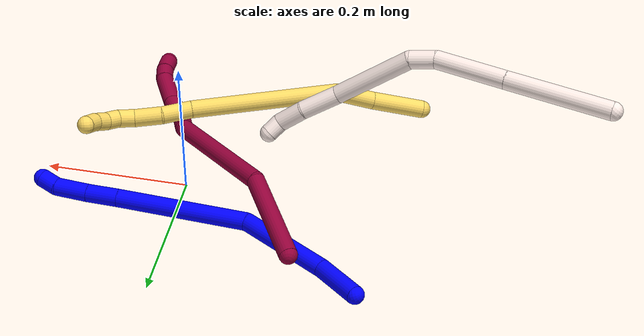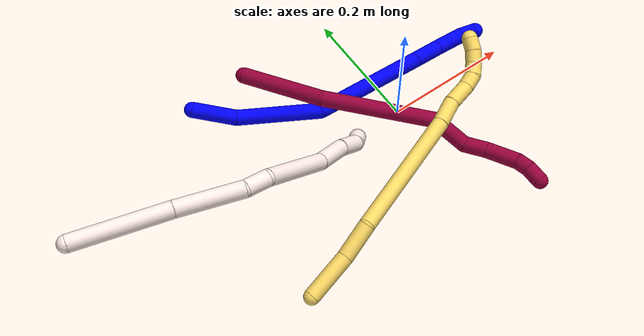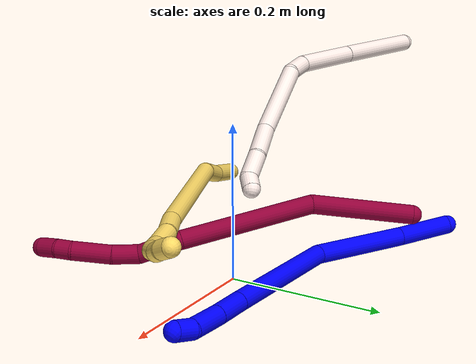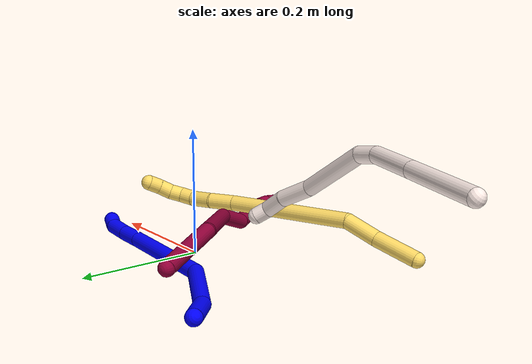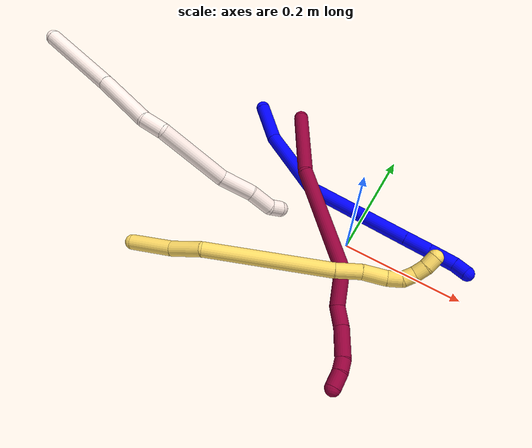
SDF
<sdf version="1.7">
 <world name="default">
  <model name="1">
   <static>0</static>
   <link name="1">
    <collision name="collision-cylinder-e_1_1_4">
     <pose>0.019555 0.013454 0.026318 -0.472562 0.584486 -0.144627</pose>
     <geometry><cylinder><radius>0.0125</radius><length>0.070882</length></cylinder></geometry>
     <surface>
      <friction><ode><mu>1.16</mu><mu2>1.16</mu2><slip1>0</slip1><slip2>0</slip2></ode></friction>
      <contact><ode><kp>1e+06</kp><kd>1</kd><max_vel>0</max_vel><min_depth>0.001</min_depth></ode></contact>
     </surface>
    </collision>
    <visual name="visual-cylinder-e_1_1_4">
     <pose>0.019555 0.013454 0.026318 -0.472562 0.584486 -0.144627</pose>
     <geometry><cylinder><radius>0.0125</radius><length>0.070882</length></cylinder></geometry>
     <material><ambient>0 0 1 1</ambient></material>
    </visual>
    <collision name="collision-cylinder-e_2_4_5">
     <pose>0.080134 0.035462 0.104098 -0.164734 0.666375 -0.057127</pose>
     <geometry><cylinder><radius>0.0125</radius><length>0.13273</length></cylinder></geometry>
     <surface>
      <friction><ode><mu>1.16</mu><mu2>1.16</mu2><slip1>0</slip1><slip2>0</slip2></ode></friction>
      <contact><ode><kp>1e+06</kp><kd>1</kd><max_vel>0</max_vel><min_depth>0.001</min_depth></ode></contact>
     </surface>
    </collision>
    <visual name="visual-cylinder-e_2_4_5">
     <pose>0.080134 0.035462 0.104098 -0.164734 0.666375 -0.057127</pose>
     <geometry><cylinder><radius>0.0125</radius><length>0.13273</length></cylinder></geometry>
     <material><ambient>0 0 1 1</ambient></material>
    </visual>
    <collision name="collision-cylinder-e_3_5_6">
     <pose>0.161346 0.017553 0.233184 0.328572 0.455655 0.076835</pose>
     <geometry><cylinder><radius>0.0125</radius><length>0.18266</length></cylinder></geometry>
     <surface>
      <friction><ode><mu>1.16</mu><mu2>1.16</mu2><slip1>0</slip1><slip2>0</slip2></ode></friction>
      <contact><ode><kp>1e+06</kp><kd>1</kd><max_vel>0</max_vel><min_depth>0.001</min_depth></ode></contact>
     </surface>
    </collision>
    <visual name="visual-cylinder-e_3_5_6">
     <pose>0.161346 0.017553 0.233184 0.328572 0.455655 0.076835</pose>
     <geometry><cylinder><radius>0.0125</radius><length>0.18266</length></cylinder></geometry>
     <material><ambient>0 0 1 1</ambient></material>
    </visual>
    <collision name="collision-cylinder-e_4_6_7">
     <pose>0.210836 -0.015401 0.329498 0.334169 0.439396 0.075287</pose>
     <geometry><cylinder><radius>0.0125</radius><length>0.043722</length></cylinder></geometry>
     <surface>
      <friction><ode><mu>1.16</mu><mu2>1.16</mu2><slip1>0</slip1><slip2>0</slip2></ode></friction>
      <contact><ode><kp>1e+06</kp><kd>1</kd><max_vel>0</max_vel><min_depth>0.001</min_depth></ode></contact>
     </surface>
    </collision>
    <visual name="visual-cylinder-e_4_6_7">
     <pose>0.210836 -0.015401 0.329498 0.334169 0.439396 0.075287</pose>
     <geometry><cylinder><radius>0.0125</radius><length>0.043722</length></cylinder></geometry>
     <material><ambient>0 0 1 1</ambient></material>
    </visual>
    <collision name="collision-cylinder-e_5_7_8">
     <pose>0.230597 -0.028307 0.36743 0.321922 0.476184 0.07877</pose>
     <geometry><cylinder><radius>0.0125</radius><length>0.045647</length></cylinder></geometry>
     <surface>
      <friction><ode><mu>1.16</mu><mu2>1.16</mu2><slip1>0</slip1><slip2>0</slip2></ode></friction>
      <contact><ode><kp>1e+06</kp><kd>1</kd><max_vel>0</max_vel><min_depth>0.001</min_depth></ode></contact>
     </surface>
    </collision>
    <visual name="visual-cylinder-e_5_7_8">
     <pose>0.230597 -0.028307 0.36743 0.321922 0.476184 0.07877</pose>
     <geometry><cylinder><radius>0.0125</radius><length>0.045647</length></cylinder></geometry>
     <material><ambient>0 0 1 1</ambient></material>
    </visual>
    <collision name="collision-cylinder-e_6_8_2">
     <pose>0.249553 -0.035866 0.395327 0.131086 0.771734 0.053315</pose>
     <geometry><cylinder><radius>0.0125</radius><length>0.024359</length></cylinder></geometry>
     <surface>
      <friction><ode><mu>1.16</mu><mu2>1.16</mu2><slip1>0</slip1><slip2>0</slip2></ode></friction>
      <contact><ode><kp>1e+06</kp><kd>1</kd><max_vel>0</max_vel><min_depth>0.001</min_depth></ode></contact>
     </surface>
    </collision>
    <visual name="visual-cylinder-e_6_8_2">
     <pose>0.249553 -0.035866 0.395327 0.131086 0.771734 0.053315</pose>
     <geometry><cylinder><radius>0.0125</radius><length>0.024359</length></cylinder></geometry>
     <material><ambient>0 0 1 1</ambient></material>
    </visual>
    <collision name="collision-sphere-2">
     <pose>0.258047 -0.037007 0.403981 0 -0 0</pose>
     <geometry><sphere><radius>0.0125</radius></sphere></geometry>
     <surface>
      <friction><ode><mu>1.16</mu><mu2>1.16</mu2><slip1>0</slip1><slip2>0</slip2></ode></friction>
      <contact><ode><kp>1e+06</kp><kd>1</kd><max_vel>0</max_vel><min_depth>0.001</min_depth></ode></contact>
     </surface>
    </collision>
    <visual name="visual-sphere-2">
     <pose>0.258047 -0.037007 0.403981 0 -0 0</pose>
     <geometry><sphere><radius>0.0125</radius></sphere></geometry>
     <material><ambient>0 0 1 1</ambient></material>
    </visual>
    <collision name="collision-sphere-4">
     <pose>0.039111 0.026907 0.052637 0 -0 0</pose>
     <geometry><sphere><radius>0.0125</radius></sphere></geometry>
     <surface>
      <friction><ode><mu>1.16</mu><mu2>1.16</mu2><slip1>0</slip1><slip2>0</slip2></ode></friction>
      <contact><ode><kp>1e+06</kp><kd>1</kd><max_vel>0</max_vel><min_depth>0.001</min_depth></ode></contact>
     </surface>
    </collision>
    <visual name="visual-sphere-4">
     <pose>0.039111 0.026907 0.052637 0 -0 0</pose>
     <geometry><sphere><radius>0.0125</radius></sphere></geometry>
     <material><ambient>0 0 1 1</ambient></material>
    </visual>
    <collision name="collision-sphere-1">
     <geometry><sphere><radius>0.0125</radius></sphere></geometry>
     <surface>
      <friction><ode><mu>1.16</mu><mu2>1.16</mu2><slip1>0</slip1><slip2>0</slip2></ode></friction>
      <contact><ode><kp>1e+06</kp><kd>1</kd><max_vel>0</max_vel><min_depth>0.001</min_depth></ode></contact>
     </surface>
    </collision>
    <visual name="visual-sphere-1">
     <geometry><sphere><radius>0.0125</radius></sphere></geometry>
     <material><ambient>0 0 1 1</ambient></material>
    </visual>
    <collision name="collision-sphere-8">
     <pose>0.241059 -0.034725 0.386672 0 -0 0</pose>
     <geometry><sphere><radius>0.0125</radius></sphere></geometry>
     <surface>
      <friction><ode><mu>1.16</mu><mu2>1.16</mu2><slip1>0</slip1><slip2>0</slip2></ode></friction>
      <contact><ode><kp>1e+06</kp><kd>1</kd><max_vel>0</max_vel><min_depth>0.001</min_depth></ode></contact>
     </surface>
    </collision>
    <visual name="visual-sphere-8">
     <pose>0.241059 -0.034725 0.386672 0 -0 0</pose>
     <geometry><sphere><radius>0.0125</radius></sphere></geometry>
     <material><ambient>0 0 1 1</ambient></material>
    </visual>
    <collision name="collision-sphere-5">
     <pose>0.121157 0.044017 0.155559 0 -0 0</pose>
     <geometry><sphere><radius>0.0125</radius></sphere></geometry>
     <surface>
      <friction><ode><mu>1.16</mu><mu2>1.16</mu2><slip1>0</slip1><slip2>0</slip2></ode></friction>
      <contact><ode><kp>1e+06</kp><kd>1</kd><max_vel>0</max_vel><min_depth>0.001</min_depth></ode></contact>
     </surface>
    </collision>
    <visual name="visual-sphere-5">
     <pose>0.121157 0.044017 0.155559 0 -0 0</pose>
     <geometry><sphere><radius>0.0125</radius></sphere></geometry>
     <material><ambient>0 0 1 1</ambient></material>
    </visual>
    <collision name="collision-sphere-6">
     <pose>0.201536 -0.008912 0.310808 0 -0 0</pose>
     <geometry><sphere><radius>0.0125</radius></sphere></geometry>
     <surface>
      <friction><ode><mu>1.16</mu><mu2>1.16</mu2><slip1>0</slip1><slip2>0</slip2></ode></friction>
      <contact><ode><kp>1e+06</kp><kd>1</kd><max_vel>0</max_vel><min_depth>0.001</min_depth></ode></contact>
     </surface>
    </collision>
    <visual name="visual-sphere-6">
     <pose>0.201536 -0.008912 0.310808 0 -0 0</pose>
     <geometry><sphere><radius>0.0125</radius></sphere></geometry>
     <material><ambient>0 0 1 1</ambient></material>
    </visual>
    <collision name="collision-sphere-7">
     <pose>0.220135 -0.021889 0.348188 0 -0 0</pose>
     <geometry><sphere><radius>0.0125</radius></sphere></geometry>
     <surface>
      <friction><ode><mu>1.16</mu><mu2>1.16</mu2><slip1>0</slip1><slip2>0</slip2></ode></friction>
      <contact><ode><kp>1e+06</kp><kd>1</kd><max_vel>0</max_vel><min_depth>0.001</min_depth></ode></contact>
     </surface>
    </collision>
    <visual name="visual-sphere-7">
     <pose>0.220135 -0.021889 0.348188 0 -0 0</pose>
     <geometry><sphere><radius>0.0125</radius></sphere></geometry>
     <material><ambient>0 0 1 1</ambient></material>
    </visual>
    <inertial>
     <pose>0.134634 0.012055 0.198168 0 -0 0</pose>
     <mass>0.5</mass>
     <inertia>
      <ixx>0.000707</ixx>
      <ixy>0</ixy>
      <ixz>0</ixz>
      <iyy>0.00076</iyy>
      <iyz>0</iyz>
      <izz>-0.00023</izz>
     </inertia>
    </inertial>
   </link>
   <pose>-0.26911 0.17903 0.022063 -2.46077 -0.831567 -0.915773</pose>
  </model>
  <model name="5">
   <static>0</static>
   <link name="5">
    <collision name="collision-cylinder-e_1_1_4">
     <pose>-0.002682 0.008479 -0.035673 -2.90825 -0.073017 0.604182</pose>
     <geometry><cylinder><radius>0.0125</radius><length>0.073529</length></cylinder></geometry>
     <surface>
      <friction><ode><mu>1.16</mu><mu2>1.16</mu2><slip1>0</slip1><slip2>0</slip2></ode></friction>
      <contact><ode><kp>1e+06</kp><kd>1</kd><max_vel>0</max_vel><min_depth>0.001</min_depth></ode></contact>
     </surface>
    </collision>
    <visual name="visual-cylinder-e_1_1_4">
     <pose>-0.002682 0.008479 -0.035673 -2.90825 -0.073017 0.604182</pose>
     <geometry><cylinder><radius>0.0125</radius><length>0.073529</length></cylinder></geometry>
     <material><ambient>1 0.858824 0.4 1</ambient></material>
    </visual>
    <collision name="collision-cylinder-e_2_4_5">
     <pose>-0.010913 0.022059 -0.097785 -2.95098 -0.203211 1.63517</pose>
     <geometry><cylinder><radius>0.0125</radius><length>0.054985</length></cylinder></geometry>
     <surface>
      <friction><ode><mu>1.16</mu><mu2>1.16</mu2><slip1>0</slip1><slip2>0</slip2></ode></friction>
      <contact><ode><kp>1e+06</kp><kd>1</kd><max_vel>0</max_vel><min_depth>0.001</min_depth></ode></contact>
     </surface>
    </collision>
    <visual name="visual-cylinder-e_2_4_5">
     <pose>-0.010913 0.022059 -0.097785 -2.95098 -0.203211 1.63517</pose>
     <geometry><cylinder><radius>0.0125</radius><length>0.054985</length></cylinder></geometry>
     <material><ambient>1 0.858824 0.4 1</ambient></material>
    </visual>
    <collision name="collision-cylinder-e_3_5_6">
     <pose>-0.002191 0.030246 -0.226852 -3.11153 0.138102 -2.71357</pose>
     <geometry><cylinder><radius>0.0125</radius><length>0.207323</length></cylinder></geometry>
     <surface>
      <friction><ode><mu>1.16</mu><mu2>1.16</mu2><slip1>0</slip1><slip2>0</slip2></ode></friction>
      <contact><ode><kp>1e+06</kp><kd>1</kd><max_vel>0</max_vel><min_depth>0.001</min_depth></ode></contact>
     </surface>
    </collision>
    <visual name="visual-cylinder-e_3_5_6">
     <pose>-0.002191 0.030246 -0.226852 -3.11153 0.138102 -2.71357</pose>
     <geometry><cylinder><radius>0.0125</radius><length>0.207323</length></cylinder></geometry>
     <material><ambient>1 0.858824 0.4 1</ambient></material>
    </visual>
    <collision name="collision-cylinder-e_4_6_7">
     <pose>0.014344 0.031496 -0.350219 3.0533 0.108348 1.77438</pose>
     <geometry><cylinder><radius>0.0125</radius><length>0.041886</length></cylinder></geometry>
     <surface>
      <friction><ode><mu>1.16</mu><mu2>1.16</mu2><slip1>0</slip1><slip2>0</slip2></ode></friction>
      <contact><ode><kp>1e+06</kp><kd>1</kd><max_vel>0</max_vel><min_depth>0.001</min_depth></ode></contact>
     </surface>
    </collision>
    <visual name="visual-cylinder-e_4_6_7">
     <pose>0.014344 0.031496 -0.350219 3.0533 0.108348 1.77438</pose>
     <geometry><cylinder><radius>0.0125</radius><length>0.041886</length></cylinder></geometry>
     <material><ambient>1 0.858824 0.4 1</ambient></material>
    </visual>
    <collision name="collision-cylinder-e_5_7_8">
     <pose>0.020641 0.031519 -0.389856 -3.04355 0.209232 -2.26736</pose>
     <geometry><cylinder><radius>0.0125</radius><length>0.038824</length></cylinder></geometry>
     <surface>
      <friction><ode><mu>1.16</mu><mu2>1.16</mu2><slip1>0</slip1><slip2>0</slip2></ode></friction>
      <contact><ode><kp>1e+06</kp><kd>1</kd><max_vel>0</max_vel><min_depth>0.001</min_depth></ode></contact>
     </surface>
    </collision>
    <visual name="visual-cylinder-e_5_7_8">
     <pose>0.020641 0.031519 -0.389856 -3.04355 0.209232 -2.26736</pose>
     <geometry><cylinder><radius>0.0125</radius><length>0.038824</length></cylinder></geometry>
     <material><ambient>1 0.858824 0.4 1</ambient></material>
    </visual>
    <collision name="collision-cylinder-e_6_8_9">
     <pose>0.02466 0.033885 -0.420318 -3.09775 -0.001111 0.050661</pose>
     <geometry><cylinder><radius>0.0125</radius><length>0.023152</length></cylinder></geometry>
     <surface>
      <friction><ode><mu>1.16</mu><mu2>1.16</mu2><slip1>0</slip1><slip2>0</slip2></ode></friction>
      <contact><ode><kp>1e+06</kp><kd>1</kd><max_vel>0</max_vel><min_depth>0.001</min_depth></ode></contact>
     </surface>
    </collision>
    <visual name="visual-cylinder-e_6_8_9">
     <pose>0.02466 0.033885 -0.420318 -3.09775 -0.001111 0.050661</pose>
     <geometry><cylinder><radius>0.0125</radius><length>0.023152</length></cylinder></geometry>
     <material><ambient>1 0.858824 0.4 1</ambient></material>
    </visual>
    <collision name="collision-cylinder-e_7_9_10">
     <pose>0.021967 0.030927 -0.440987 2.77788 -0.268541 -1.26715</pose>
     <geometry><cylinder><radius>0.0125</radius><length>0.020208</length></cylinder></geometry>
     <surface>
      <friction><ode><mu>1.16</mu><mu2>1.16</mu2><slip1>0</slip1><slip2>0</slip2></ode></friction>
      <contact><ode><kp>1e+06</kp><kd>1</kd><max_vel>0</max_vel><min_depth>0.001</min_depth></ode></contact>
     </surface>
    </collision>
    <visual name="visual-cylinder-e_7_9_10">
     <pose>0.021967 0.030927 -0.440987 2.77788 -0.268541 -1.26715</pose>
     <geometry><cylinder><radius>0.0125</radius><length>0.020208</length></cylinder></geometry>
     <material><ambient>1 0.858824 0.4 1</ambient></material>
    </visual>
    <collision name="collision-cylinder-e_8_10_11">
     <pose>0.014498 0.024084 -0.45824 2.74862 -0.49731 -1.81183</pose>
     <geometry><cylinder><radius>0.0125</radius><length>0.020074</length></cylinder></geometry>
     <surface>
      <friction><ode><mu>1.16</mu><mu2>1.16</mu2><slip1>0</slip1><slip2>0</slip2></ode></friction>
      <contact><ode><kp>1e+06</kp><kd>1</kd><max_vel>0</max_vel><min_depth>0.001</min_depth></ode></contact>
     </surface>
    </collision>
    <visual name="visual-cylinder-e_8_10_11">
     <pose>0.014498 0.024084 -0.45824 2.74862 -0.49731 -1.81183</pose>
     <geometry><cylinder><radius>0.0125</radius><length>0.020074</length></cylinder></geometry>
     <material><ambient>1 0.858824 0.4 1</ambient></material>
    </visual>
    <collision name="collision-cylinder-e_9_11_2">
     <pose>0.004554 0.015339 -0.473084 2.46582 -0.540996 -1.33625</pose>
     <geometry><cylinder><radius>0.0125</radius><length>0.02002</length></cylinder></geometry>
     <surface>
      <friction><ode><mu>1.16</mu><mu2>1.16</mu2><slip1>0</slip1><slip2>0</slip2></ode></friction>
      <contact><ode><kp>1e+06</kp><kd>1</kd><max_vel>0</max_vel><min_depth>0.001</min_depth></ode></contact>
     </surface>
    </collision>
    <visual name="visual-cylinder-e_9_11_2">
     <pose>0.004554 0.015339 -0.473084 2.46582 -0.540996 -1.33625</pose>
     <geometry><cylinder><radius>0.0125</radius><length>0.02002</length></cylinder></geometry>
     <material><ambient>1 0.858824 0.4 1</ambient></material>
    </visual>
    <collision name="collision-sphere-2">
     <pose>-0.000601 0.009972 -0.479778 0 -0 0</pose>
     <geometry><sphere><radius>0.0125</radius></sphere></geometry>
     <surface>
      <friction><ode><mu>1.16</mu><mu2>1.16</mu2><slip1>0</slip1><slip2>0</slip2></ode></friction>
      <contact><ode><kp>1e+06</kp><kd>1</kd><max_vel>0</max_vel><min_depth>0.001</min_depth></ode></contact>
     </surface>
    </collision>
    <visual name="visual-sphere-2">
     <pose>-0.000601 0.009972 -0.479778 0 -0 0</pose>
     <geometry><sphere><radius>0.0125</radius></sphere></geometry>
     <material><ambient>1 0.858824 0.4 1</ambient></material>
    </visual>
    <collision name="collision-sphere-11">
     <pose>0.009709 0.020706 -0.466389 0 -0 0</pose>
     <geometry><sphere><radius>0.0125</radius></sphere></geometry>
     <surface>
      <friction><ode><mu>1.16</mu><mu2>1.16</mu2><slip1>0</slip1><slip2>0</slip2></ode></friction>
      <contact><ode><kp>1e+06</kp><kd>1</kd><max_vel>0</max_vel><min_depth>0.001</min_depth></ode></contact>
     </surface>
    </collision>
    <visual name="visual-sphere-11">
     <pose>0.009709 0.020706 -0.466389 0 -0 0</pose>
     <geometry><sphere><radius>0.0125</radius></sphere></geometry>
     <material><ambient>1 0.858824 0.4 1</ambient></material>
    </visual>
    <collision name="collision-sphere-10">
     <pose>0.019286 0.027462 -0.450092 0 -0 0</pose>
     <geometry><sphere><radius>0.0125</radius></sphere></geometry>
     <surface>
      <friction><ode><mu>1.16</mu><mu2>1.16</mu2><slip1>0</slip1><slip2>0</slip2></ode></friction>
      <contact><ode><kp>1e+06</kp><kd>1</kd><max_vel>0</max_vel><min_depth>0.001</min_depth></ode></contact>
     </surface>
    </collision>
    <visual name="visual-sphere-10">
     <pose>0.019286 0.027462 -0.450092 0 -0 0</pose>
     <geometry><sphere><radius>0.0125</radius></sphere></geometry>
     <material><ambient>1 0.858824 0.4 1</ambient></material>
    </visual>
    <collision name="collision-sphere-9">
     <pose>0.024648 0.034393 -0.431882 0 -0 0</pose>
     <geometry><sphere><radius>0.0125</radius></sphere></geometry>
     <surface>
      <friction><ode><mu>1.16</mu><mu2>1.16</mu2><slip1>0</slip1><slip2>0</slip2></ode></friction>
      <contact><ode><kp>1e+06</kp><kd>1</kd><max_vel>0</max_vel><min_depth>0.001</min_depth></ode></contact>
     </surface>
    </collision>
    <visual name="visual-sphere-9">
     <pose>0.024648 0.034393 -0.431882 0 -0 0</pose>
     <geometry><sphere><radius>0.0125</radius></sphere></geometry>
     <material><ambient>1 0.858824 0.4 1</ambient></material>
    </visual>
    <collision name="collision-sphere-4">
     <pose>-0.005364 0.016957 -0.071346 0 -0 0</pose>
     <geometry><sphere><radius>0.0125</radius></sphere></geometry>
     <surface>
      <friction><ode><mu>1.16</mu><mu2>1.16</mu2><slip1>0</slip1><slip2>0</slip2></ode></friction>
      <contact><ode><kp>1e+06</kp><kd>1</kd><max_vel>0</max_vel><min_depth>0.001</min_depth></ode></contact>
     </surface>
    </collision>
    <visual name="visual-sphere-4">
     <pose>-0.005364 0.016957 -0.071346 0 -0 0</pose>
     <geometry><sphere><radius>0.0125</radius></sphere></geometry>
     <material><ambient>1 0.858824 0.4 1</ambient></material>
    </visual>
    <collision name="collision-sphere-1">
     <geometry><sphere><radius>0.0125</radius></sphere></geometry>
     <surface>
      <friction><ode><mu>1.16</mu><mu2>1.16</mu2><slip1>0</slip1><slip2>0</slip2></ode></friction>
      <contact><ode><kp>1e+06</kp><kd>1</kd><max_vel>0</max_vel><min_depth>0.001</min_depth></ode></contact>
     </surface>
    </collision>
    <visual name="visual-sphere-1">
     <geometry><sphere><radius>0.0125</radius></sphere></geometry>
     <material><ambient>1 0.858824 0.4 1</ambient></material>
    </visual>
    <collision name="collision-sphere-8">
     <pose>0.024673 0.033378 -0.408753 0 -0 0</pose>
     <geometry><sphere><radius>0.0125</radius></sphere></geometry>
     <surface>
      <friction><ode><mu>1.16</mu><mu2>1.16</mu2><slip1>0</slip1><slip2>0</slip2></ode></friction>
      <contact><ode><kp>1e+06</kp><kd>1</kd><max_vel>0</max_vel><min_depth>0.001</min_depth></ode></contact>
     </surface>
    </collision>
    <visual name="visual-sphere-8">
     <pose>0.024673 0.033378 -0.408753 0 -0 0</pose>
     <geometry><sphere><radius>0.0125</radius></sphere></geometry>
     <material><ambient>1 0.858824 0.4 1</ambient></material>
    </visual>
    <collision name="collision-sphere-5">
     <pose>-0.016461 0.02716 -0.124224 0 -0 0</pose>
     <geometry><sphere><radius>0.0125</radius></sphere></geometry>
     <surface>
      <friction><ode><mu>1.16</mu><mu2>1.16</mu2><slip1>0</slip1><slip2>0</slip2></ode></friction>
      <contact><ode><kp>1e+06</kp><kd>1</kd><max_vel>0</max_vel><min_depth>0.001</min_depth></ode></contact>
     </surface>
    </collision>
    <visual name="visual-sphere-5">
     <pose>-0.016461 0.02716 -0.124224 0 -0 0</pose>
     <geometry><sphere><radius>0.0125</radius></sphere></geometry>
     <material><ambient>1 0.858824 0.4 1</ambient></material>
    </visual>
    <collision name="collision-sphere-6">
     <pose>0.01208 0.033332 -0.32948 0 -0 0</pose>
     <geometry><sphere><radius>0.0125</radius></sphere></geometry>
     <surface>
      <friction><ode><mu>1.16</mu><mu2>1.16</mu2><slip1>0</slip1><slip2>0</slip2></ode></friction>
      <contact><ode><kp>1e+06</kp><kd>1</kd><max_vel>0</max_vel><min_depth>0.001</min_depth></ode></contact>
     </surface>
    </collision>
    <visual name="visual-sphere-6">
     <pose>0.01208 0.033332 -0.32948 0 -0 0</pose>
     <geometry><sphere><radius>0.0125</radius></sphere></geometry>
     <material><ambient>1 0.858824 0.4 1</ambient></material>
    </visual>
    <collision name="collision-sphere-7">
     <pose>0.016609 0.02966 -0.370958 0 -0 0</pose>
     <geometry><sphere><radius>0.0125</radius></sphere></geometry>
     <surface>
      <friction><ode><mu>1.16</mu><mu2>1.16</mu2><slip1>0</slip1><slip2>0</slip2></ode></friction>
      <contact><ode><kp>1e+06</kp><kd>1</kd><max_vel>0</max_vel><min_depth>0.001</min_depth></ode></contact>
     </surface>
    </collision>
    <visual name="visual-sphere-7">
     <pose>0.016609 0.02966 -0.370958 0 -0 0</pose>
     <geometry><sphere><radius>0.0125</radius></sphere></geometry>
     <material><ambient>1 0.858824 0.4 1</ambient></material>
    </visual>
    <inertial>
     <pose>0.003096 0.0257 -0.244297 0 -0 0</pose>
     <mass>0.5</mass>
     <inertia>
      <ixx>-0.000925</ixx>
      <ixy>0</ixy>
      <ixz>0</ixz>
      <iyy>0.000389</iyy>
      <iyz>0</iyz>
      <izz>-0.000167</izz>
     </inertia>
    </inertial>
   </link>
   <pose>-0.300344 -0.190961 0.03225 1.94407 1.27014 -0.778708</pose>
  </model>
  <model name="8">
   <static>0</static>
   <link name="8">
    <collision name="collision-cylinder-e_1_1_4">
     <pose>0.018865 -0.007055 0.062882 0.111727 0.289747 0.016317</pose>
     <geometry><cylinder><radius>0.0125</radius><length>0.132058</length></cylinder></geometry>
     <surface>
      <friction><ode><mu>1.16</mu><mu2>1.16</mu2><slip1>0</slip1><slip2>0</slip2></ode></friction>
      <contact><ode><kp>1e+06</kp><kd>1</kd><max_vel>0</max_vel><min_depth>0.001</min_depth></ode></contact>
     </surface>
    </collision>
    <visual name="visual-cylinder-e_1_1_4">
     <pose>0.018865 -0.007055 0.062882 0.111727 0.289747 0.016317</pose>
     <geometry><cylinder><radius>0.0125</radius><length>0.132058</length></cylinder></geometry>
     <material><ambient>0.584314 0 0.227451 1</ambient></material>
    </visual>
    <collision name="collision-cylinder-e_2_4_5">
     <pose>0.067032 -0.057246 0.198092 0.537766 0.334842 0.093072</pose>
     <geometry><cylinder><radius>0.0125</radius><length>0.178331</length></cylinder></geometry>
     <surface>
      <friction><ode><mu>1.16</mu><mu2>1.16</mu2><slip1>0</slip1><slip2>0</slip2></ode></friction>
      <contact><ode><kp>1e+06</kp><kd>1</kd><max_vel>0</max_vel><min_depth>0.001</min_depth></ode></contact>
     </surface>
    </collision>
    <visual name="visual-cylinder-e_2_4_5">
     <pose>0.067032 -0.057246 0.198092 0.537766 0.334842 0.093072</pose>
     <geometry><cylinder><radius>0.0125</radius><length>0.178331</length></cylinder></geometry>
     <material><ambient>0.584314 0 0.227451 1</ambient></material>
    </visual>
    <collision name="collision-cylinder-e_3_5_6">
     <pose>0.091935 -0.111934 0.296815 0.412557 -0.151467 -0.031753</pose>
     <geometry><cylinder><radius>0.0125</radius><length>0.058295</length></cylinder></geometry>
     <surface>
      <friction><ode><mu>1.16</mu><mu2>1.16</mu2><slip1>0</slip1><slip2>0</slip2></ode></friction>
      <contact><ode><kp>1e+06</kp><kd>1</kd><max_vel>0</max_vel><min_depth>0.001</min_depth></ode></contact>
     </surface>
    </collision>
    <visual name="visual-cylinder-e_3_5_6">
     <pose>0.091935 -0.111934 0.296815 0.412557 -0.151467 -0.031753</pose>
     <geometry><cylinder><radius>0.0125</radius><length>0.058295</length></cylinder></geometry>
     <material><ambient>0.584314 0 0.227451 1</ambient></material>
    </visual>
    <collision name="collision-cylinder-e_4_6_7">
     <pose>0.092951 -0.127738 0.339428 0.256327 0.312387 0.040582</pose>
     <geometry><cylinder><radius>0.0125</radius><length>0.035234</length></cylinder></geometry>
     <surface>
      <friction><ode><mu>1.16</mu><mu2>1.16</mu2><slip1>0</slip1><slip2>0</slip2></ode></friction>
      <contact><ode><kp>1e+06</kp><kd>1</kd><max_vel>0</max_vel><min_depth>0.001</min_depth></ode></contact>
     </surface>
    </collision>
    <visual name="visual-cylinder-e_4_6_7">
     <pose>0.092951 -0.127738 0.339428 0.256327 0.312387 0.040582</pose>
     <geometry><cylinder><radius>0.0125</radius><length>0.035234</length></cylinder></geometry>
     <material><ambient>0.584314 0 0.227451 1</ambient></material>
    </visual>
    <collision name="collision-cylinder-e_5_7_8">
     <pose>0.10427 -0.134415 0.380269 0.098246 0.234244 0.011569</pose>
     <geometry><cylinder><radius>0.0125</radius><length>0.050878</length></cylinder></geometry>
     <surface>
      <friction><ode><mu>1.16</mu><mu2>1.16</mu2><slip1>0</slip1><slip2>0</slip2></ode></friction>
      <contact><ode><kp>1e+06</kp><kd>1</kd><max_vel>0</max_vel><min_depth>0.001</min_depth></ode></contact>
     </surface>
    </collision>
    <visual name="visual-cylinder-e_5_7_8">
     <pose>0.10427 -0.134415 0.380269 0.098246 0.234244 0.011569</pose>
     <geometry><cylinder><radius>0.0125</radius><length>0.050878</length></cylinder></geometry>
     <material><ambient>0.584314 0 0.227451 1</ambient></material>
    </visual>
    <collision name="collision-cylinder-e_6_8_9">
     <pose>0.11013 -0.136836 0.414963 -0.000625 -0.004495 1e-06</pose>
     <geometry><cylinder><radius>0.0125</radius><length>0.020138</length></cylinder></geometry>
     <surface>
      <friction><ode><mu>1.16</mu><mu2>1.16</mu2><slip1>0</slip1><slip2>0</slip2></ode></friction>
      <contact><ode><kp>1e+06</kp><kd>1</kd><max_vel>0</max_vel><min_depth>0.001</min_depth></ode></contact>
     </surface>
    </collision>
    <visual name="visual-cylinder-e_6_8_9">
     <pose>0.11013 -0.136836 0.414963 -0.000625 -0.004495 1e-06</pose>
     <geometry><cylinder><radius>0.0125</radius><length>0.020138</length></cylinder></geometry>
     <material><ambient>0.584314 0 0.227451 1</ambient></material>
    </visual>
    <collision name="collision-cylinder-e_7_9_2">
     <pose>0.107125 -0.13662 0.437209 -0.017174 -0.238358 0.002057</pose>
     <geometry><cylinder><radius>0.0125</radius><length>0.025066</length></cylinder></geometry>
     <surface>
      <friction><ode><mu>1.16</mu><mu2>1.16</mu2><slip1>0</slip1><slip2>0</slip2></ode></friction>
      <contact><ode><kp>1e+06</kp><kd>1</kd><max_vel>0</max_vel><min_depth>0.001</min_depth></ode></contact>
     </surface>
    </collision>
    <visual name="visual-cylinder-e_7_9_2">
     <pose>0.107125 -0.13662 0.437209 -0.017174 -0.238358 0.002057</pose>
     <geometry><cylinder><radius>0.0125</radius><length>0.025066</length></cylinder></geometry>
     <material><ambient>0.584314 0 0.227451 1</ambient></material>
    </visual>
    <collision name="collision-sphere-2">
     <pose>0.104166 -0.136411 0.449386 0 -0 0</pose>
     <geometry><sphere><radius>0.0125</radius></sphere></geometry>
     <surface>
      <friction><ode><mu>1.16</mu><mu2>1.16</mu2><slip1>0</slip1><slip2>0</slip2></ode></friction>
      <contact><ode><kp>1e+06</kp><kd>1</kd><max_vel>0</max_vel><min_depth>0.001</min_depth></ode></contact>
     </surface>
    </collision>
    <visual name="visual-sphere-2">
     <pose>0.104166 -0.136411 0.449386 0 -0 0</pose>
     <geometry><sphere><radius>0.0125</radius></sphere></geometry>
     <material><ambient>0.584314 0 0.227451 1</ambient></material>
    </visual>
    <collision name="collision-sphere-9">
     <pose>0.110084 -0.136829 0.425032 0 -0 0</pose>
     <geometry><sphere><radius>0.0125</radius></sphere></geometry>
     <surface>
      <friction><ode><mu>1.16</mu><mu2>1.16</mu2><slip1>0</slip1><slip2>0</slip2></ode></friction>
      <contact><ode><kp>1e+06</kp><kd>1</kd><max_vel>0</max_vel><min_depth>0.001</min_depth></ode></contact>
     </surface>
    </collision>
    <visual name="visual-sphere-9">
     <pose>0.110084 -0.136829 0.425032 0 -0 0</pose>
     <geometry><sphere><radius>0.0125</radius></sphere></geometry>
     <material><ambient>0.584314 0 0.227451 1</ambient></material>
    </visual>
    <collision name="collision-sphere-4">
     <pose>0.03773 -0.01411 0.125765 0 -0 0</pose>
     <geometry><sphere><radius>0.0125</radius></sphere></geometry>
     <surface>
      <friction><ode><mu>1.16</mu><mu2>1.16</mu2><slip1>0</slip1><slip2>0</slip2></ode></friction>
      <contact><ode><kp>1e+06</kp><kd>1</kd><max_vel>0</max_vel><min_depth>0.001</min_depth></ode></contact>
     </surface>
    </collision>
    <visual name="visual-sphere-4">
     <pose>0.03773 -0.01411 0.125765 0 -0 0</pose>
     <geometry><sphere><radius>0.0125</radius></sphere></geometry>
     <material><ambient>0.584314 0 0.227451 1</ambient></material>
    </visual>
    <collision name="collision-sphere-1">
     <geometry><sphere><radius>0.0125</radius></sphere></geometry>
     <surface>
      <friction><ode><mu>1.16</mu><mu2>1.16</mu2><slip1>0</slip1><slip2>0</slip2></ode></friction>
      <contact><ode><kp>1e+06</kp><kd>1</kd><max_vel>0</max_vel><min_depth>0.001</min_depth></ode></contact>
     </surface>
    </collision>
    <visual name="visual-sphere-1">
     <geometry><sphere><radius>0.0125</radius></sphere></geometry>
     <material><ambient>0.584314 0 0.227451 1</ambient></material>
    </visual>
    <collision name="collision-sphere-8">
     <pose>0.110175 -0.136842 0.404894 0 -0 0</pose>
     <geometry><sphere><radius>0.0125</radius></sphere></geometry>
     <surface>
      <friction><ode><mu>1.16</mu><mu2>1.16</mu2><slip1>0</slip1><slip2>0</slip2></ode></friction>
      <contact><ode><kp>1e+06</kp><kd>1</kd><max_vel>0</max_vel><min_depth>0.001</min_depth></ode></contact>
     </surface>
    </collision>
    <visual name="visual-sphere-8">
     <pose>0.110175 -0.136842 0.404894 0 -0 0</pose>
     <geometry><sphere><radius>0.0125</radius></sphere></geometry>
     <material><ambient>0.584314 0 0.227451 1</ambient></material>
    </visual>
    <collision name="collision-sphere-5">
     <pose>0.096333 -0.100381 0.270419 0 -0 0</pose>
     <geometry><sphere><radius>0.0125</radius></sphere></geometry>
     <surface>
      <friction><ode><mu>1.16</mu><mu2>1.16</mu2><slip1>0</slip1><slip2>0</slip2></ode></friction>
      <contact><ode><kp>1e+06</kp><kd>1</kd><max_vel>0</max_vel><min_depth>0.001</min_depth></ode></contact>
     </surface>
    </collision>
    <visual name="visual-sphere-5">
     <pose>0.096333 -0.100381 0.270419 0 -0 0</pose>
     <geometry><sphere><radius>0.0125</radius></sphere></geometry>
     <material><ambient>0.584314 0 0.227451 1</ambient></material>
    </visual>
    <collision name="collision-sphere-6">
     <pose>0.087537 -0.123487 0.323211 0 -0 0</pose>
     <geometry><sphere><radius>0.0125</radius></sphere></geometry>
     <surface>
      <friction><ode><mu>1.16</mu><mu2>1.16</mu2><slip1>0</slip1><slip2>0</slip2></ode></friction>
      <contact><ode><kp>1e+06</kp><kd>1</kd><max_vel>0</max_vel><min_depth>0.001</min_depth></ode></contact>
     </surface>
    </collision>
    <visual name="visual-sphere-6">
     <pose>0.087537 -0.123487 0.323211 0 -0 0</pose>
     <geometry><sphere><radius>0.0125</radius></sphere></geometry>
     <material><ambient>0.584314 0 0.227451 1</ambient></material>
    </visual>
    <collision name="collision-sphere-7">
     <pose>0.098366 -0.131988 0.355644 0 -0 0</pose>
     <geometry><sphere><radius>0.0125</radius></sphere></geometry>
     <surface>
      <friction><ode><mu>1.16</mu><mu2>1.16</mu2><slip1>0</slip1><slip2>0</slip2></ode></friction>
      <contact><ode><kp>1e+06</kp><kd>1</kd><max_vel>0</max_vel><min_depth>0.001</min_depth></ode></contact>
     </surface>
    </collision>
    <visual name="visual-sphere-7">
     <pose>0.098366 -0.131988 0.355644 0 -0 0</pose>
     <geometry><sphere><radius>0.0125</radius></sphere></geometry>
     <material><ambient>0.584314 0 0.227451 1</ambient></material>
    </visual>
    <inertial>
     <pose>0.066575 -0.07037 0.22311 0 -0 0</pose>
     <mass>0.5</mass>
     <inertia>
      <ixx>0.000733</ixx>
      <ixy>0</ixy>
      <ixz>0</ixz>
      <iyy>0.000687</iyy>
      <iyz>0</iyz>
      <izz>8.3e-05</izz>
     </inertia>
    </inertial>
   </link>
   <pose>-0.179806 0.16332 0.060272 1.53403 -0.635737 0.264878</pose>
  </model>
  <model name="11">
   <static>0</static>
   <link name="11">
    <collision name="collision-cylinder-e_1_1_4">
     <pose>-0.000746 -0.061268 -0.036078 2.10298 -0.010488 -0.018347</pose>
     <geometry><cylinder><radius>0.0125</radius><length>0.142211</length></cylinder></geometry>
     <surface>
      <friction><ode><mu>1.16</mu><mu2>1.16</mu2><slip1>0</slip1><slip2>0</slip2></ode></friction>
      <contact><ode><kp>1e+06</kp><kd>1</kd><max_vel>0</max_vel><min_depth>0.001</min_depth></ode></contact>
     </surface>
    </collision>
    <visual name="visual-cylinder-e_1_1_4">
     <pose>-0.000746 -0.061268 -0.036078 2.10298 -0.010488 -0.018347</pose>
     <geometry><cylinder><radius>0.0125</radius><length>0.142211</length></cylinder></geometry>
     <material><ambient>1 0.933333 0.909804 1</ambient></material>
    </visual>
    <collision name="collision-cylinder-e_2_4_5">
     <pose>-0.003661 -0.164378 -0.096905 2.10494 -0.044606 -0.078182</pose>
     <geometry><cylinder><radius>0.0125</radius><length>0.097323</length></cylinder></geometry>
     <surface>
      <friction><ode><mu>1.16</mu><mu2>1.16</mu2><slip1>0</slip1><slip2>0</slip2></ode></friction>
      <contact><ode><kp>1e+06</kp><kd>1</kd><max_vel>0</max_vel><min_depth>0.001</min_depth></ode></contact>
     </surface>
    </collision>
    <visual name="visual-cylinder-e_2_4_5">
     <pose>-0.003661 -0.164378 -0.096905 2.10494 -0.044606 -0.078182</pose>
     <geometry><cylinder><radius>0.0125</radius><length>0.097323</length></cylinder></geometry>
     <material><ambient>1 0.933333 0.909804 1</ambient></material>
    </visual>
    <collision name="collision-cylinder-e_3_5_6">
     <pose>-0.003666 -0.218209 -0.134028 2.37199 0.125046 0.306739</pose>
     <geometry><cylinder><radius>0.0125</radius><length>0.034729</length></cylinder></geometry>
     <surface>
      <friction><ode><mu>1.16</mu><mu2>1.16</mu2><slip1>0</slip1><slip2>0</slip2></ode></friction>
      <contact><ode><kp>1e+06</kp><kd>1</kd><max_vel>0</max_vel><min_depth>0.001</min_depth></ode></contact>
     </surface>
    </collision>
    <visual name="visual-cylinder-e_3_5_6">
     <pose>-0.003666 -0.218209 -0.134028 2.37199 0.125046 0.306739</pose>
     <geometry><cylinder><radius>0.0125</radius><length>0.034729</length></cylinder></geometry>
     <material><ambient>1 0.933333 0.909804 1</ambient></material>
    </visual>
    <collision name="collision-cylinder-e_4_6_7">
     <pose>-0.00253 -0.24922 -0.199978 2.80041 -0.018126 -0.105129</pose>
     <geometry><cylinder><radius>0.0125</radius><length>0.113727</length></cylinder></geometry>
     <surface>
      <friction><ode><mu>1.16</mu><mu2>1.16</mu2><slip1>0</slip1><slip2>0</slip2></ode></friction>
      <contact><ode><kp>1e+06</kp><kd>1</kd><max_vel>0</max_vel><min_depth>0.001</min_depth></ode></contact>
     </surface>
    </collision>
    <visual name="visual-cylinder-e_4_6_7">
     <pose>-0.00253 -0.24922 -0.199978 2.80041 -0.018126 -0.105129</pose>
     <geometry><cylinder><radius>0.0125</radius><length>0.113727</length></cylinder></geometry>
     <material><ambient>1 0.933333 0.909804 1</ambient></material>
    </visual>
    <collision name="collision-cylinder-e_5_7_8">
     <pose>0.00123 -0.277466 -0.277769 2.77767 0.182833 0.924451</pose>
     <geometry><cylinder><radius>0.0125</radius><length>0.052699</length></cylinder></geometry>
     <surface>
      <friction><ode><mu>1.16</mu><mu2>1.16</mu2><slip1>0</slip1><slip2>0</slip2></ode></friction>
      <contact><ode><kp>1e+06</kp><kd>1</kd><max_vel>0</max_vel><min_depth>0.001</min_depth></ode></contact>
     </surface>
    </collision>
    <visual name="visual-cylinder-e_5_7_8">
     <pose>0.00123 -0.277466 -0.277769 2.77767 0.182833 0.924451</pose>
     <geometry><cylinder><radius>0.0125</radius><length>0.052699</length></cylinder></geometry>
     <material><ambient>1 0.933333 0.909804 1</ambient></material>
    </visual>
    <collision name="collision-cylinder-e_6_8_9">
     <pose>0.005925 -0.292377 -0.320394 2.84194 -0.004966 -0.032894</pose>
     <geometry><cylinder><radius>0.0125</radius><length>0.038542</length></cylinder></geometry>
     <surface>
      <friction><ode><mu>1.16</mu><mu2>1.16</mu2><slip1>0</slip1><slip2>0</slip2></ode></friction>
      <contact><ode><kp>1e+06</kp><kd>1</kd><max_vel>0</max_vel><min_depth>0.001</min_depth></ode></contact>
     </surface>
    </collision>
    <visual name="visual-cylinder-e_6_8_9">
     <pose>0.005925 -0.292377 -0.320394 2.84194 -0.004966 -0.032894</pose>
     <geometry><cylinder><radius>0.0125</radius><length>0.038542</length></cylinder></geometry>
     <material><ambient>1 0.933333 0.909804 1</ambient></material>
    </visual>
    <collision name="collision-cylinder-e_7_9_2">
     <pose>0.009643 -0.297961 -0.348465 -3.13074 0.376067 -3.08459</pose>
     <geometry><cylinder><radius>0.0125</radius><length>0.020769</length></cylinder></geometry>
     <surface>
      <friction><ode><mu>1.16</mu><mu2>1.16</mu2><slip1>0</slip1><slip2>0</slip2></ode></friction>
      <contact><ode><kp>1e+06</kp><kd>1</kd><max_vel>0</max_vel><min_depth>0.001</min_depth></ode></contact>
     </surface>
    </collision>
    <visual name="visual-cylinder-e_7_9_2">
     <pose>0.009643 -0.297961 -0.348465 -3.13074 0.376067 -3.08459</pose>
     <geometry><cylinder><radius>0.0125</radius><length>0.020769</length></cylinder></geometry>
     <material><ambient>1 0.933333 0.909804 1</ambient></material>
    </visual>
    <collision name="collision-sphere-2">
     <pose>0.013457 -0.297856 -0.358123 0 -0 0</pose>
     <geometry><sphere><radius>0.0125</radius></sphere></geometry>
     <surface>
      <friction><ode><mu>1.16</mu><mu2>1.16</mu2><slip1>0</slip1><slip2>0</slip2></ode></friction>
      <contact><ode><kp>1e+06</kp><kd>1</kd><max_vel>0</max_vel><min_depth>0.001</min_depth></ode></contact>
     </surface>
    </collision>
    <visual name="visual-sphere-2">
     <pose>0.013457 -0.297856 -0.358123 0 -0 0</pose>
     <geometry><sphere><radius>0.0125</radius></sphere></geometry>
     <material><ambient>1 0.933333 0.909804 1</ambient></material>
    </visual>
    <collision name="collision-sphere-9">
     <pose>0.005829 -0.298066 -0.338806 0 -0 0</pose>
     <geometry><sphere><radius>0.0125</radius></sphere></geometry>
     <surface>
      <friction><ode><mu>1.16</mu><mu2>1.16</mu2><slip1>0</slip1><slip2>0</slip2></ode></friction>
      <contact><ode><kp>1e+06</kp><kd>1</kd><max_vel>0</max_vel><min_depth>0.001</min_depth></ode></contact>
     </surface>
    </collision>
    <visual name="visual-sphere-9">
     <pose>0.005829 -0.298066 -0.338806 0 -0 0</pose>
     <geometry><sphere><radius>0.0125</radius></sphere></geometry>
     <material><ambient>1 0.933333 0.909804 1</ambient></material>
    </visual>
    <collision name="collision-sphere-4">
     <pose>-0.001491 -0.122537 -0.072156 0 -0 0</pose>
     <geometry><sphere><radius>0.0125</radius></sphere></geometry>
     <surface>
      <friction><ode><mu>1.16</mu><mu2>1.16</mu2><slip1>0</slip1><slip2>0</slip2></ode></friction>
      <contact><ode><kp>1e+06</kp><kd>1</kd><max_vel>0</max_vel><min_depth>0.001</min_depth></ode></contact>
     </surface>
    </collision>
    <visual name="visual-sphere-4">
     <pose>-0.001491 -0.122537 -0.072156 0 -0 0</pose>
     <geometry><sphere><radius>0.0125</radius></sphere></geometry>
     <material><ambient>1 0.933333 0.909804 1</ambient></material>
    </visual>
    <collision name="collision-sphere-1">
     <geometry><sphere><radius>0.0125</radius></sphere></geometry>
     <surface>
      <friction><ode><mu>1.16</mu><mu2>1.16</mu2><slip1>0</slip1><slip2>0</slip2></ode></friction>
      <contact><ode><kp>1e+06</kp><kd>1</kd><max_vel>0</max_vel><min_depth>0.001</min_depth></ode></contact>
     </surface>
    </collision>
    <visual name="visual-sphere-1">
     <geometry><sphere><radius>0.0125</radius></sphere></geometry>
     <material><ambient>1 0.933333 0.909804 1</ambient></material>
    </visual>
    <collision name="collision-sphere-8">
     <pose>0.00602 -0.286689 -0.301982 0 -0 0</pose>
     <geometry><sphere><radius>0.0125</radius></sphere></geometry>
     <surface>
      <friction><ode><mu>1.16</mu><mu2>1.16</mu2><slip1>0</slip1><slip2>0</slip2></ode></friction>
      <contact><ode><kp>1e+06</kp><kd>1</kd><max_vel>0</max_vel><min_depth>0.001</min_depth></ode></contact>
     </surface>
    </collision>
    <visual name="visual-sphere-8">
     <pose>0.00602 -0.286689 -0.301982 0 -0 0</pose>
     <geometry><sphere><radius>0.0125</radius></sphere></geometry>
     <material><ambient>1 0.933333 0.909804 1</ambient></material>
    </visual>
    <collision name="collision-sphere-5">
     <pose>-0.005831 -0.20622 -0.121654 0 -0 0</pose>
     <geometry><sphere><radius>0.0125</radius></sphere></geometry>
     <surface>
      <friction><ode><mu>1.16</mu><mu2>1.16</mu2><slip1>0</slip1><slip2>0</slip2></ode></friction>
      <contact><ode><kp>1e+06</kp><kd>1</kd><max_vel>0</max_vel><min_depth>0.001</min_depth></ode></contact>
     </surface>
    </collision>
    <visual name="visual-sphere-5">
     <pose>-0.005831 -0.20622 -0.121654 0 -0 0</pose>
     <geometry><sphere><radius>0.0125</radius></sphere></geometry>
     <material><ambient>1 0.933333 0.909804 1</ambient></material>
    </visual>
    <collision name="collision-sphere-6">
     <pose>-0.0015 -0.230197 -0.146401 0 -0 0</pose>
     <geometry><sphere><radius>0.0125</radius></sphere></geometry>
     <surface>
      <friction><ode><mu>1.16</mu><mu2>1.16</mu2><slip1>0</slip1><slip2>0</slip2></ode></friction>
      <contact><ode><kp>1e+06</kp><kd>1</kd><max_vel>0</max_vel><min_depth>0.001</min_depth></ode></contact>
     </surface>
    </collision>
    <visual name="visual-sphere-6">
     <pose>-0.0015 -0.230197 -0.146401 0 -0 0</pose>
     <geometry><sphere><radius>0.0125</radius></sphere></geometry>
     <material><ambient>1 0.933333 0.909804 1</ambient></material>
    </visual>
    <collision name="collision-sphere-7">
     <pose>-0.003561 -0.268244 -0.253556 0 -0 0</pose>
     <geometry><sphere><radius>0.0125</radius></sphere></geometry>
     <surface>
      <friction><ode><mu>1.16</mu><mu2>1.16</mu2><slip1>0</slip1><slip2>0</slip2></ode></friction>
      <contact><ode><kp>1e+06</kp><kd>1</kd><max_vel>0</max_vel><min_depth>0.001</min_depth></ode></contact>
     </surface>
    </collision>
    <visual name="visual-sphere-7">
     <pose>-0.003561 -0.268244 -0.253556 0 -0 0</pose>
     <geometry><sphere><radius>0.0125</radius></sphere></geometry>
     <material><ambient>1 0.933333 0.909804 1</ambient></material>
    </visual>
    <inertial>
     <pose>-0.000768 -0.185423 -0.152367 0 -0 0</pose>
     <mass>0.5</mass>
     <inertia>
      <ixx>0.000459</ixx>
      <ixy>0</ixy>
      <ixz>0</ixz>
      <iyy>-0.000334</iyy>
      <iyz>0</iyz>
      <izz>0.00031</izz>
     </inertia>
    </inertial>
   </link>
   <pose>-0.556263 -0.014405 0.213936 -0.530386 -0.49867 1.31767</pose>
  </model>
 </world>
</sdf>
